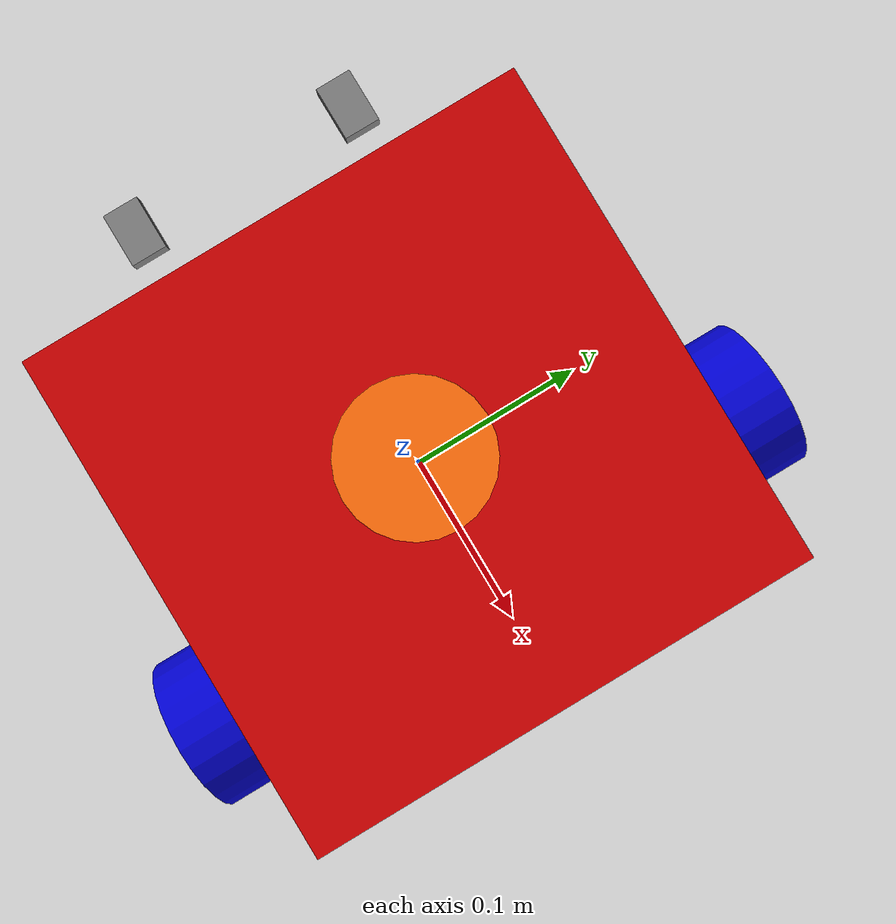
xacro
<?xml version="1.0" ?>
<robot xmlns:xacro="http://ros.org/wiki/xacro">

  <!-- Include LIDAR definition -->
  <xacro:include filename="$(find waffle)/description/lidar.xacro"/>

  <xacro:property name="r200_cam_rgb_px" value="0.005"/>
  <xacro:property name="r200_cam_rgb_py" value="0.018"/>
  <xacro:property name="r200_cam_rgb_pz" value="0.013"/>
  <xacro:property name="r200_cam_depth_offset" value="0.01"/>

  <!-- Robot dimensions -->
  <xacro:property name="wheel_radius" value="0.040"/>  <!-- 40mm -->
  <xacro:property name="wheel_width" value="0.035"/>   <!-- 35mm -->
  <xacro:property name="wheel_separation" value="0.300"/> <!-- 300mm -->
  <xacro:property name="wheel_to_front" value="0.060"/> <!-- 60mm -->
  <xacro:property name="base_width" value="0.265"/>    <!-- 265mm -->
  <xacro:property name="base_length" value="0.265"/>   <!-- 265mm -->
  <xacro:property name="base_height" value="0.060"/>   <!-- 60mm -->
  <xacro:property name="caster_height" value="0.014"/> <!-- 14mm -->

  <!-- Init colour -->
  <material name="black">
      <color rgba="0.0 0.0 0.0 1.0"/>
  </material>

  <material name="light_blue">
      <color rgba="0.5 0.8 1.0 1.0"/>
  </material>

  <material name="dark">
    <color rgba="0.3 0.3 0.3 1.0"/>
  </material>

  <material name="light_black">
    <color rgba="0.4 0.4 0.4 1.0"/>
  </material>

  <material name="blue">
    <color rgba="0.0 0.0 0.8 1.0"/>
  </material>

  <material name="green">
    <color rgba="0.0 0.8 0.0 1.0"/>
  </material>

  <material name="grey">
    <color rgba="0.5 0.5 0.5 1.0"/>
  </material>

  <material name="orange">
    <color rgba="1.0 0.4235 0.0392 1.0"/>
  </material>

  <material name="brown">
    <color rgba="0.8706 0.8118 0.7647 1.0"/>
  </material>

  <material name="red">
    <color rgba="0.8 0.0 0.0 1.0"/>
  </material>

  <material name="white">
    <color rgba="1.0 1.0 1.0 1.0"/>
  </material>

  <link name="base_footprint"/>

  <joint name="base_joint" type="fixed">
    <parent link="base_footprint"/>
    <child link="base_link" />
    <origin xyz="0 0 ${wheel_radius + caster_height}" rpy="0 0 0"/>
  </joint>

  <link name="base_link">
    <visual>
      <origin xyz="0 0 ${base_height/2}" rpy="0 0 0"/>
      <geometry>
        <box size="${base_length} ${base_width} ${base_height}"/>
      </geometry>
      <material name="red"/>
    </visual>

    <collision>
      <origin xyz="0 0 ${base_height/2}" rpy="0 0 0"/>
      <geometry>
        <box size="${base_length} ${base_width} ${base_height}"/>
      </geometry>
    </collision>

    <inertial>
      <origin xyz="0 0 0" rpy="0 0 0"/>
      <mass value="1.3729096e+00"/>
      <inertia ixx="8.7002718e-03" ixy="-4.7576583e-05" ixz="1.1160499e-04"
               iyy="8.6195418e-03" iyz="-3.5422299e-06"
               izz="1.4612727e-02" />
    </inertial>
  </link>

  <joint name="wheel_left_joint" type="continuous">
    <parent link="base_link"/>
    <child link="wheel_left_link"/>
    <origin xyz="${wheel_to_front} ${wheel_separation/2} 0" rpy="-1.57 0 0"/>
    <axis xyz="0 0 1"/>
  </joint>

  <link name="wheel_left_link">
    <visual>
      <origin xyz="0 0 0" rpy="0 0 0"/>
      <geometry>
        <cylinder length="${wheel_width}" radius="${wheel_radius}"/>
      </geometry>
      <material name="blue"/>
    </visual>

    <collision>
      <origin xyz="0 0 0" rpy="0 0 0"/>
      <geometry>
        <cylinder length="${wheel_width}" radius="${wheel_radius}"/>
      </geometry>
    </collision>

    <inertial>
      <origin xyz="0 0 0" />
      <mass value="2.8498940e-02" />
      <inertia ixx="1.1175580e-05" ixy="-4.2369783e-11" ixz="-5.9381719e-09"
               iyy="1.1192413e-05" iyz="-1.4400107e-11"
               izz="2.0712558e-05" />
      </inertial>
  </link>

  <joint name="wheel_right_joint" type="continuous">
    <parent link="base_link"/>
    <child link="wheel_right_link"/>
    <origin xyz="${wheel_to_front} -${wheel_separation/2} 0" rpy="-1.57 0 0"/>
    <axis xyz="0 0 1"/>
  </joint>

  <link name="wheel_right_link">
    <visual>
      <origin xyz="0 0 0" rpy="0 0 0"/>
      <geometry>
        <cylinder length="${wheel_width}" radius="${wheel_radius}"/>
      </geometry>
      <material name="blue"/>
    </visual>

    <collision>
      <origin xyz="0 0 0" rpy="0 0 0"/>
      <geometry>
        <cylinder length="${wheel_width}" radius="${wheel_radius}"/>
      </geometry>
    </collision>

    <inertial>
      <origin xyz="0 0 0" />
      <mass value="2.8498940e-02" />
      <inertia ixx="1.1175580e-05" ixy="-4.2369783e-11" ixz="-5.9381719e-09"
               iyy="1.1192413e-05" iyz="-1.4400107e-11"
               izz="2.0712558e-05" />
      </inertial>
  </link>

  <joint name="caster_back_right_joint" type="fixed">
    <parent link="base_link"/>
    <child link="caster_back_right_link"/>
    <origin xyz="-0.177 -0.064 -0.004" rpy="-1.57 0 0"/>
  </joint>

  <link name="caster_back_right_link">
    <visual>
      <origin xyz="0 0.001 0" rpy="0 0 0"/>
      <geometry>
        <box size="0.030 0.009 0.020"/>
      </geometry>
      <material name="grey"/>
    </visual>

    <collision>
      <origin xyz="0 0.001 0" rpy="0 0 0"/>
      <geometry>
        <box size="0.030 0.009 0.020"/>
      </geometry>
    </collision>

    <inertial>
      <origin xyz="0 0 0" />
      <mass value="0.005" />
      <inertia ixx="0.001" ixy="0.0" ixz="0.0"
               iyy="0.001" iyz="0.0"
               izz="0.001" />
    </inertial>
  </link>

  <joint name="caster_back_left_joint" type="fixed">
    <parent link="base_link"/>
    <child link="caster_back_left_link"/>
    <origin xyz="-0.177 0.064 -0.004" rpy="-1.57 0 0"/>
  </joint>

  <link name="caster_back_left_link">
    <visual>
      <origin xyz="0 0.001 0" rpy="0 0 0"/>
      <geometry>
        <box size="0.030 0.009 0.020"/>
      </geometry>
      <material name="grey"/>
    </visual>

    <collision>
      <origin xyz="0 0.001 0" rpy="0 0 0"/>
      <geometry>
        <box size="0.030 0.009 0.020"/>
      </geometry>
    </collision>

    <inertial>
      <origin xyz="0 0 0" />
      <mass value="0.005" />
      <inertia ixx="0.001" ixy="0.0" ixz="0.0"
               iyy="0.001" iyz="0.0"
               izz="0.001" />
    </inertial>
  </link>

  <!-- Gazebo materials -->
  <gazebo reference="base_link">
    <material>Gazebo/Red</material>
  </gazebo>

  <gazebo reference="caster_back_right_link">
    <material>Gazebo/Grey</material>
  </gazebo>

  <gazebo reference="caster_back_left_link">
    <material>Gazebo/Grey</material>
  </gazebo>

  <gazebo reference="wheel_left_link">
    <material>Gazebo/Blue</material>
  </gazebo>

  <gazebo reference="wheel_right_link">
    <material>Gazebo/Blue</material>
  </gazebo>

  <gazebo reference="laser_frame">
    <material>Gazebo/Orange</material>
    <sensor type="ray" name="lds_lfcd_sensor">
      <pose>0 0 0 0 0 0</pose>
      <visualize>false</visualize>
      <update_rate>5</update_rate>
      <ray>
        <scan>
          <horizontal>
            <samples>360</samples>
            <resolution>1</resolution>
            <min_angle>0.0</min_angle>
            <max_angle>6.28319</max_angle>
          </horizontal>
        </scan>
        <range>
          <min>0.120</min>
          <max>3.5</max>
          <resolution>0.015</resolution>
        </range>
        <noise>
          <type>gaussian</type>
          <mean>0.0</mean>
          <stddev>0.01</stddev>
        </noise>
      </ray>
      <plugin name="gazebo_ros_head_hokuyo_controller" filename="libgazebo_ros_ray_sensor.so">
        <ros>
          <remapping>~/out:=scan</remapping>
        </ros>
        <output_type>sensor_msgs/LaserScan</output_type>
        <frame_name>laser_frame</frame_name>
      </plugin>
    </sensor>
  </gazebo>

  <gazebo reference="camera_link">
    <material>Gazebo/Black</material>
  </gazebo>

  <!-- Add sensor plugins for Gazebo simulation -->
  <gazebo reference="laser_frame">
    <sensor type="ray" name="lds_lfcd_sensor">
      <pose>0 0 0 0 0 0</pose>
      <visualize>true</visualize>
      <update_rate>5</update_rate>
      <ray>
        <scan>
          <horizontal>
            <samples>360</samples>
            <resolution>1</resolution>
            <min_angle>-3.14</min_angle>
            <max_angle>3.14</max_angle>
          </horizontal>
        </scan>
        <range>
          <min>0.3</min>
          <max>12</max>
          <resolution>0.015</resolution>
        </range>
        <noise>
          <type>gaussian</type>
          <mean>0.0</mean>
          <stddev>0.01</stddev>
        </noise>
      </ray>
      <plugin name="gazebo_ros_head_hokuyo_controller" filename="libgazebo_ros_ray_sensor.so">
        <ros>
          <remapping>~/out:=scan</remapping>
        </ros>
        <output_type>sensor_msgs/LaserScan</output_type>
        <frame_name>laser_frame</frame_name>
      </plugin>
    </sensor>
  </gazebo>

  <gazebo reference="camera_rgb_frame">
    <sensor type="camera" name="camera">
      <update_rate>30.0</update_rate>
      <camera name="head">
        <horizontal_fov>1.3962634</horizontal_fov>
        <image>
          <width>1920</width>
          <height>1080</height>
          <format>R8G8B8</format>
        </image>
        <clip>
          <near>0.02</near>
          <far>300</far>
        </clip>
        <noise>
          <type>gaussian</type>
          <mean>0.0</mean>
          <stddev>0.007</stddev>
        </noise>
      </camera>
      <plugin name="camera_controller" filename="libgazebo_ros_camera.so">
        <alwaysOn>true</alwaysOn>
        <updateRate>0.0</updateRate>
        <cameraName>camera</cameraName>
        <imageTopicName>rgb/image_raw</imageTopicName>
        <cameraInfoTopicName>rgb/camera_info</cameraInfoTopicName>
        <frameName>camera_rgb_optical_frame</frameName>
        <hackBaseline>0.07</hackBaseline>
        <distortionK1>0.0</distortionK1>
        <distortionK2>0.0</distortionK2>
        <distortionK3>0.0</distortionK3>
        <distortionT1>0.0</distortionT1>
        <distortionT2>0.0</distortionT2>
      </plugin>
    </sensor>
  </gazebo>

  <!-- Add differential drive plugin -->
  <gazebo>
    <plugin name="differential_drive_controller" filename="libgazebo_ros_diff_drive.so">
      <update_rate>30</update_rate>
      <left_joint>wheel_left_joint</left_joint>
      <right_joint>wheel_right_joint</right_joint>
      <wheel_separation>${wheel_separation}</wheel_separation>
      <wheel_diameter>${wheel_radius * 2}</wheel_diameter>
      <max_wheel_torque>20</max_wheel_torque>
      <max_wheel_acceleration>1.0</max_wheel_acceleration>
      <command_topic>cmd_vel</command_topic>
      <publish_odom>true</publish_odom>
      <publish_odom_tf>true</publish_odom_tf>
      <publish_wheel_tf>false</publish_wheel_tf>
      <odometry_topic>odom</odometry_topic>
      <odometry_frame>odom</odometry_frame>
      <robot_base_frame>base_footprint</robot_base_frame>
    </plugin>
  </gazebo>

  <!-- IMU plugin -->
  <gazebo reference="imu_link">
    <gravity>true</gravity>
    <sensor name="imu_sensor" type="imu">
      <always_on>true</always_on>
      <update_rate>100</update_rate>
      <visualize>true</visualize>
      <topic>imu</topic>
      <plugin filename="libgazebo_ros_imu_sensor.so" name="imu_plugin">
        <ros>
          <remapping>~/out:=imu</remapping>
        </ros>
        <topicName>imu</topicName>
        <bodyName>imu_link</bodyName>
        <updateRateHZ>100.0</updateRateHZ>
        <gaussianNoise>0.0</gaussianNoise>
        <xyzOffset>0 0 0</xyzOffset>
        <rpyOffset>0 0 0</rpyOffset>
        <frameName>imu_link</frameName>
      </plugin>
      <pose>0 0 0 0 0 0</pose>
    </sensor>
  </gazebo>

</robot>

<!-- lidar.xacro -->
<robot xmlns:xacro="http://ros.org/wiki/xacro">

  <!-- LIDAR properties -->
  <xacro:property name="lidar_radius" value="0.035"/>  <!-- 35mm -->
  <xacro:property name="lidar_height" value="0.025"/>  <!-- 25mm -->
  <xacro:property name="lidar_elevation" value="0.100"/> <!-- 100mm -->

  <!-- LIDAR Definition -->
  <joint name="scan_joint" type="fixed">
    <parent link="base_link"/>
    <child link="laser_frame"/>
    <origin xyz="0 0 ${lidar_elevation}" rpy="0 0 0"/>
  </joint>

  <link name="laser_frame">
    <visual>
      <origin xyz="0 0 0" rpy="0 0 0"/>
      <geometry>
        <cylinder length="${lidar_height}" radius="${lidar_radius}"/>
      </geometry>
      <material name="orange"/>
    </visual>

    <collision>
      <origin xyz="0 0 0" rpy="0 0 0"/>
      <geometry>
        <cylinder length="${lidar_height}" radius="${lidar_radius}"/>
      </geometry>
    </collision>

    <inertial>
      <mass value="0.114" />
      <origin xyz="0 0 0" />
      <inertia ixx="0.001" ixy="0.0" ixz="0.0"
               iyy="0.001" iyz="0.0"
               izz="0.001" />
    </inertial>
  </link>

  <!-- Gazebo plugin for LIDAR -->
  <gazebo reference="laser_frame">
    <material>Gazebo/Orange</material>
    <sensor type="ray" name="lds_lfcd_sensor">
      <pose>0 0 0 0 0 0</pose>
      <visualize>false</visualize>
      <update_rate>5</update_rate>
      <ray>
        <scan>
          <horizontal>
            <samples>360</samples>
            <resolution>1</resolution>
            <min_angle>0.0</min_angle>
            <max_angle>6.28319</max_angle>
          </horizontal>
        </scan>
        <range>
          <min>0.120</min>
          <max>3.5</max>
          <resolution>0.015</resolution>
        </range>
        <noise>
          <type>gaussian</type>
          <mean>0.0</mean>
          <stddev>0.01</stddev>
        </noise>
      </ray>
      <plugin name="gazebo_ros_head_hokuyo_controller" filename="libgazebo_ros_ray_sensor.so">
        <ros>
          <remapping>~/out:=scan</remapping>
        </ros>
        <output_type>sensor_msgs/LaserScan</output_type>
        <frame_name>laser_frame</frame_name>
      </plugin>
    </sensor>
  </gazebo>

</robot>
